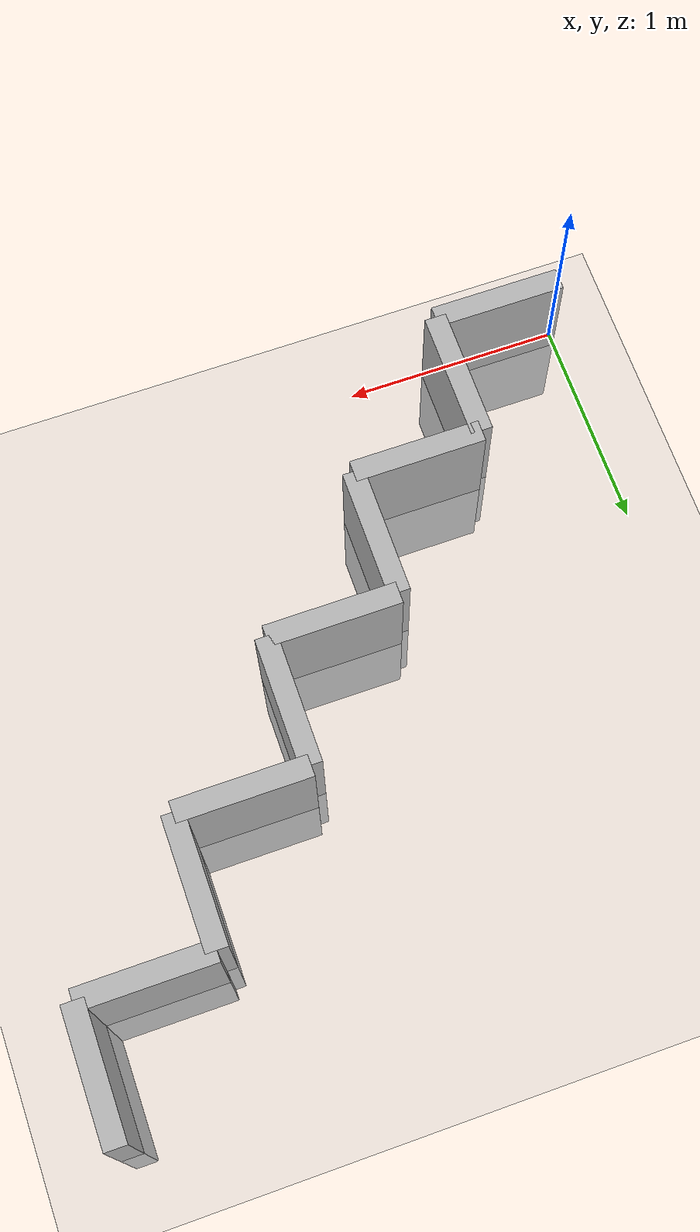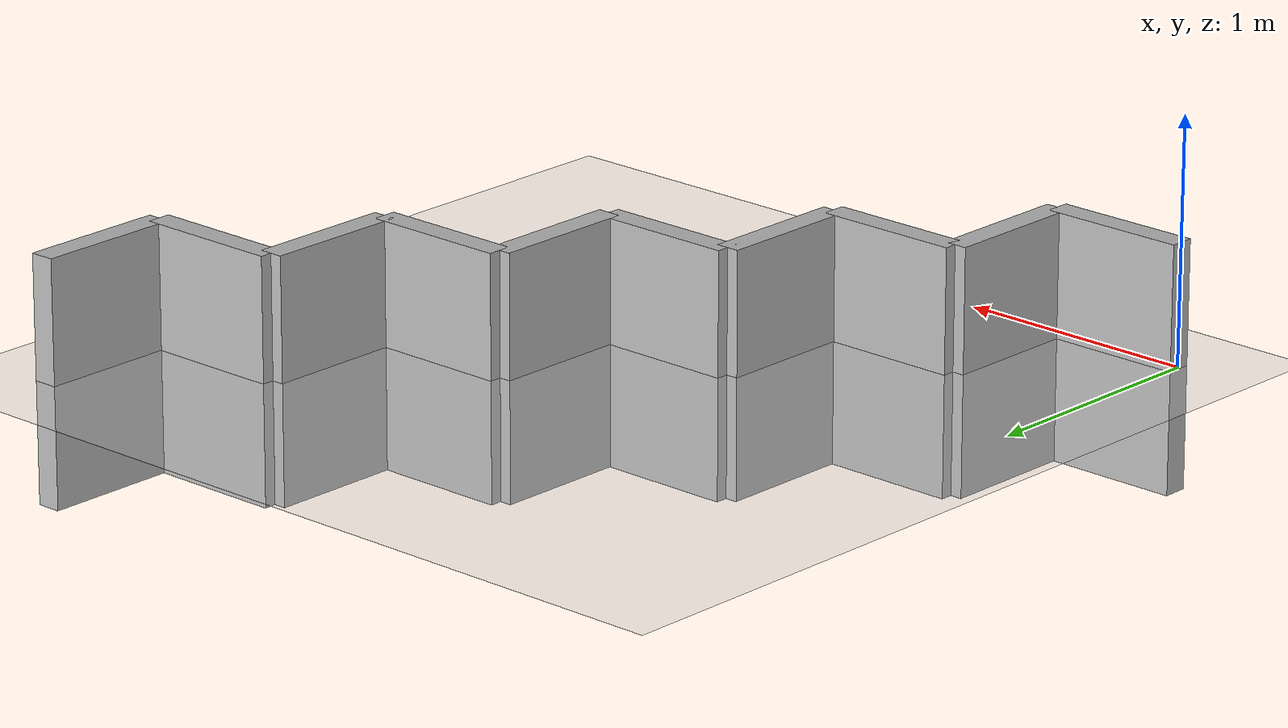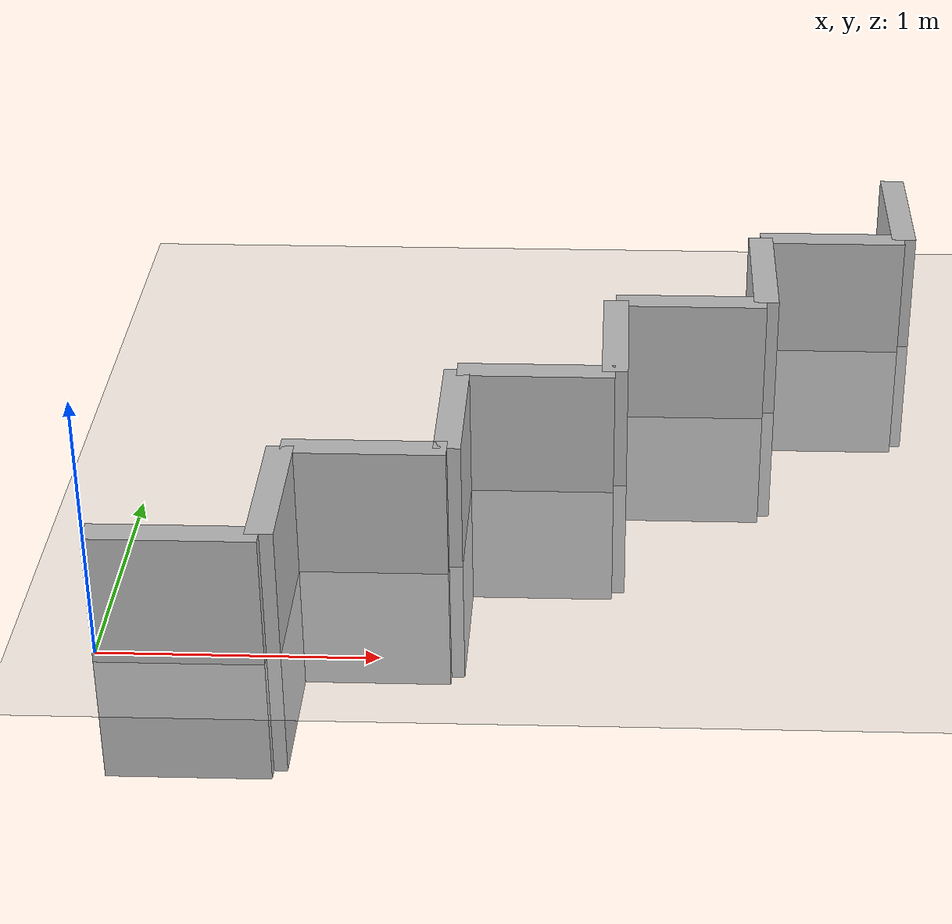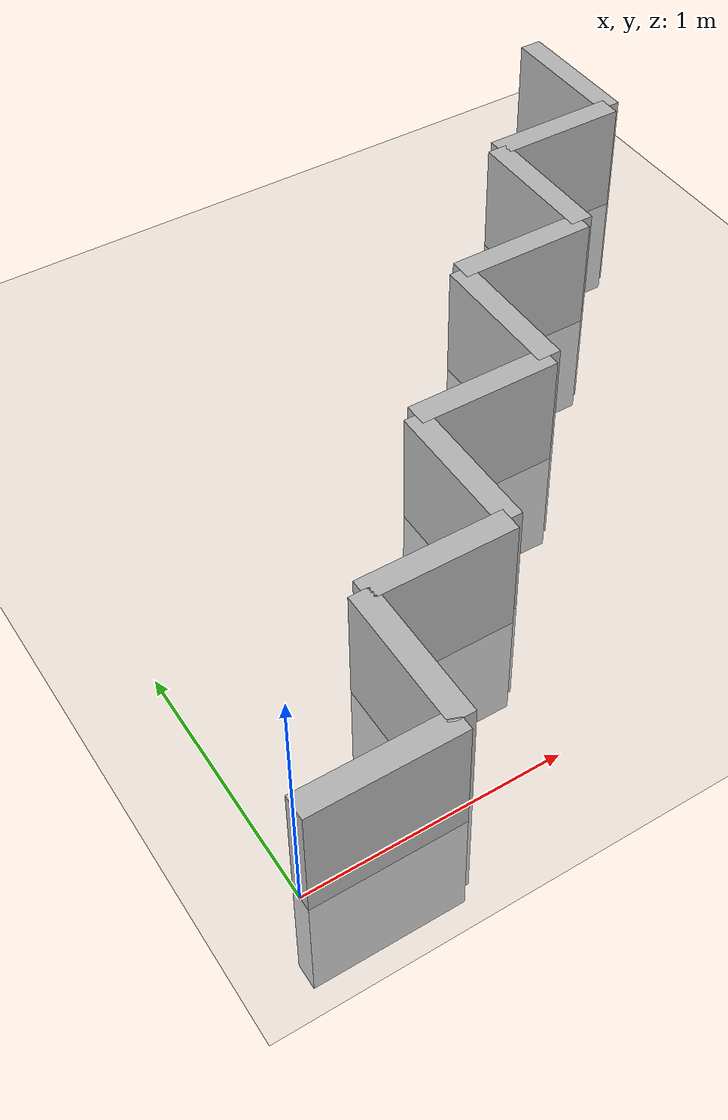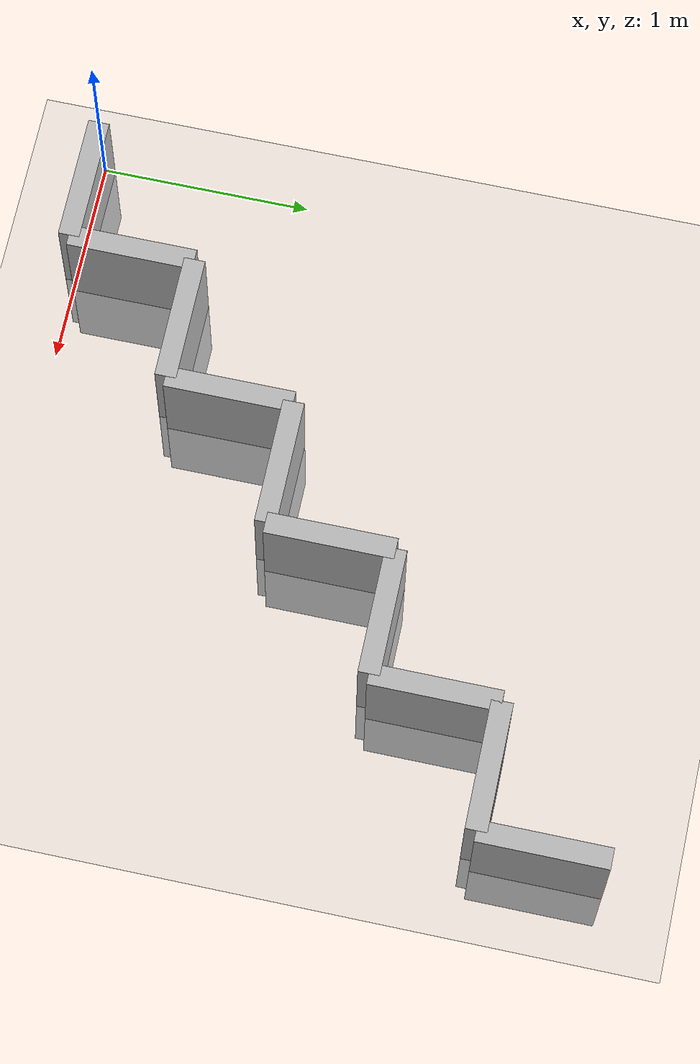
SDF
<?xml version="1.0" ?>
<sdf version="1.6">
  <world name="default">
    <include>
      <uri>model://ground_plane</uri>
    </include>
    <include>
      <uri>model://sun</uri>
    </include>

    <model name="wall_0">
      <static>true</static>
      <link name="link">
        <pose>0.3 0 0 0 0 0</pose>
        <collision name="collision">
          <geometry>
            <box>
              <size>0.6 0.1 1.0</size>
            </box>
          </geometry>
        </collision>
        <visual name="visual">
          <geometry>
            <box>
              <size>0.6 0.1 1.0</size>
            </box>
          </geometry>
        </visual>
      </link>
    </model>

    <model name="wall_1">
      <static>true</static>
      <link name="link">
        <pose>0.6 0.3 0 0 0 1.57</pose>
        <collision name="collision">
          <geometry>
            <box>
              <size>0.6 0.1 1.0</size>
            </box>
          </geometry>
        </collision>
        <visual name="visual">
          <geometry>
            <box>
              <size>0.6 0.1 1.0</size>
            </box>
          </geometry>
        </visual>
      </link>
    </model>

    <model name="wall_2">
      <static>true</static>
      <link name="link">
        <pose>0.8999999999999999 0.6 0 0 0 0</pose>
        <collision name="collision">
          <geometry>
            <box>
              <size>0.6 0.1 1.0</size>
            </box>
          </geometry>
        </collision>
        <visual name="visual">
          <geometry>
            <box>
              <size>0.6 0.1 1.0</size>
            </box>
          </geometry>
        </visual>
      </link>
    </model>

    <model name="wall_3">
      <static>true</static>
      <link name="link">
        <pose>1.2 0.8999999999999999 0 0 0 1.57</pose>
        <collision name="collision">
          <geometry>
            <box>
              <size>0.6 0.1 1.0</size>
            </box>
          </geometry>
        </collision>
        <visual name="visual">
          <geometry>
            <box>
              <size>0.6 0.1 1.0</size>
            </box>
          </geometry>
        </visual>
      </link>
    </model>

    <model name="wall_4">
      <static>true</static>
      <link name="link">
        <pose>1.5 1.2 0 0 0 0</pose>
        <collision name="collision">
          <geometry>
            <box>
              <size>0.6 0.1 1.0</size>
            </box>
          </geometry>
        </collision>
        <visual name="visual">
          <geometry>
            <box>
              <size>0.6 0.1 1.0</size>
            </box>
          </geometry>
        </visual>
      </link>
    </model>

    <model name="wall_5">
      <static>true</static>
      <link name="link">
        <pose>1.8 1.5 0 0 0 1.57</pose>
        <collision name="collision">
          <geometry>
            <box>
              <size>0.6 0.1 1.0</size>
            </box>
          </geometry>
        </collision>
        <visual name="visual">
          <geometry>
            <box>
              <size>0.6 0.1 1.0</size>
            </box>
          </geometry>
        </visual>
      </link>
    </model>

    <model name="wall_6">
      <static>true</static>
      <link name="link">
        <pose>2.1 1.8 0 0 0 0</pose>
        <collision name="collision">
          <geometry>
            <box>
              <size>0.6 0.1 1.0</size>
            </box>
          </geometry>
        </collision>
        <visual name="visual">
          <geometry>
            <box>
              <size>0.6 0.1 1.0</size>
            </box>
          </geometry>
        </visual>
      </link>
    </model>

    <model name="wall_7">
      <static>true</static>
      <link name="link">
        <pose>2.4 2.1 0 0 0 1.57</pose>
        <collision name="collision">
          <geometry>
            <box>
              <size>0.6 0.1 1.0</size>
            </box>
          </geometry>
        </collision>
        <visual name="visual">
          <geometry>
            <box>
              <size>0.6 0.1 1.0</size>
            </box>
          </geometry>
        </visual>
      </link>
    </model>

    <model name="wall_8">
      <static>true</static>
      <link name="link">
        <pose>2.6999999999999997 2.4 0 0 0 0</pose>
        <collision name="collision">
          <geometry>
            <box>
              <size>0.6 0.1 1.0</size>
            </box>
          </geometry>
        </collision>
        <visual name="visual">
          <geometry>
            <box>
              <size>0.6 0.1 1.0</size>
            </box>
          </geometry>
        </visual>
      </link>
    </model>

    <model name="wall_9">
      <static>true</static>
      <link name="link">
        <pose>2.9999999999999996 2.6999999999999997 0 0 0 1.57</pose>
        <collision name="collision">
          <geometry>
            <box>
              <size>0.6 0.1 1.0</size>
            </box>
          </geometry>
        </collision>
        <visual name="visual">
          <geometry>
            <box>
              <size>0.6 0.1 1.0</size>
            </box>
          </geometry>
        </visual>
      </link>
    </model>

  </world>
</sdf>
